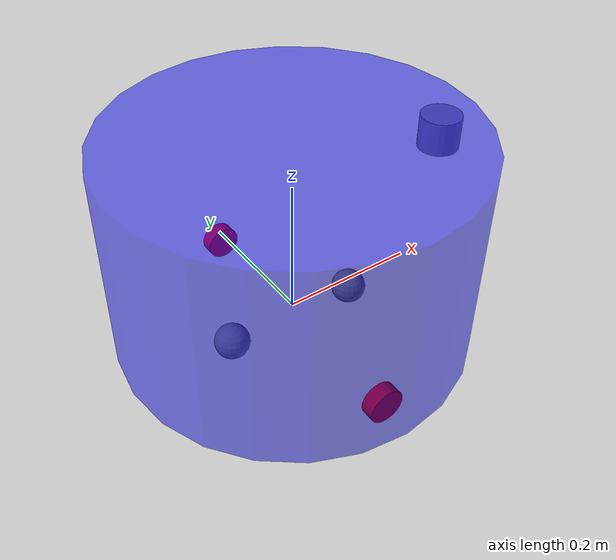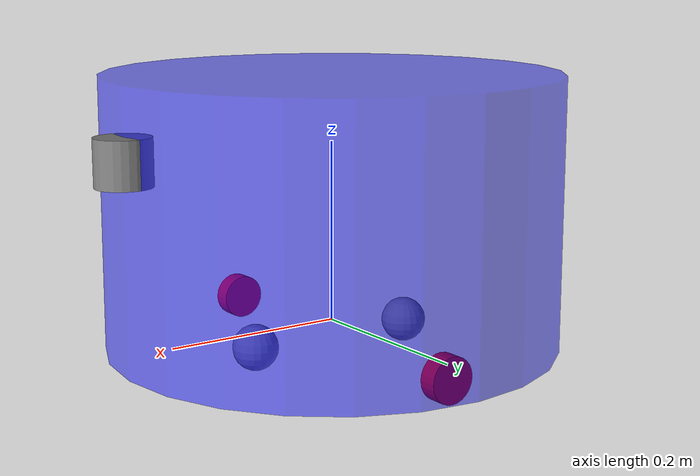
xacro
<?xml version="1.0"?>
<robot name="my_robot" xmlns:xacro="http://www.ros.org/wiki/xacro">
<xacro:include filename="$(find my_rb1_description)/urdf/robot.gazebo"/>
<material name="blue">
<color rgba="0 0 1 0.5"/>
</material>
<material name="red">
<color rgba="1 0 0 1"/>
</material>
<material name="grey">
<color rgba="0.5 0.5 0.5 1"/>
</material>

<!--  Define Properties -->
<xacro:property name="wheel_radius" value="0.025"/> <!-- 2.5 cm -->
<xacro:property name="wheel_length" value="0.02"/> <!-- 2 cm -->
<xacro:property name="wheel_mass" value="4"/> <!-- Mass of one wheel -->
<xacro:property name="caster_mass" value="1"/> <!-- Mass of one caster wheel -->
<xacro:property name="base_mass" value="14"/> <!-- Mass of base -->
<xacro:property name="lidar_mass" value="1"/> <!-- Mass of LIDAR -->

<!--  Wheel Macro -->
<xacro:macro name="wheel_link" params="prefix x y z r p yaw">
    <link name="${prefix}_wheel_link">
        <inertial>
            <mass value="${wheel_mass}"/>
            <origin xyz="${x} ${y} ${z}" rpy="${r} ${p} ${yaw}"/>
            <inertia ixx="${1/12 * wheel_mass * (3 * wheel_radius * wheel_radius + wheel_length * wheel_length)}"
                     ixy="0"
                     ixz="0"
                     iyy="${1/12 * wheel_mass * (3 * wheel_radius * wheel_radius + wheel_length * wheel_length)}"
                     iyz="0"
                     izz="${1/2 * wheel_mass * wheel_radius * wheel_radius}"/>
        </inertial>
        <collision>
            <geometry>
                <cylinder radius="${wheel_radius}" length="${wheel_length}"/>
            </geometry>
            <origin xyz="${x} ${y} ${z}" rpy="${r} ${p} ${yaw}"/>
        </collision>
        <visual>
            <geometry>
                <cylinder radius="${wheel_radius}" length="${wheel_length}"/>
            </geometry>
            <origin xyz="${x} ${y} ${z}" rpy="${r} ${p} ${yaw}"/>
            <material name="red"/>
        </visual>
    </link>
</xacro:macro>

<!--  Wheel Joint Macro -->
<xacro:macro name="wheel_joint" params="prefix x y z r p yaw">
    <joint name="${prefix}_wheel_joint" type="continuous">
        <parent link="base_link"/>
        <child link="${prefix}_wheel_link"/>
        <origin xyz="${x} ${y} ${z-0.125}" rpy="${r} ${p} ${yaw}"/>
        <axis xyz="0 0 1"/>  <!-- Ensure wheels rotate along the correct axis -->
    </joint>
</xacro:macro>
<!--base_foot_link and jin-->
<link name="base_footprint">
<origin xyz="0 0 0"/>

</link>
<joint name="base_foot_joint" type="fixed">
<parent link ="base_footprint"/>
<child link ="base_link"/>
<origin xyz="0 0 0.125" rpy="0 0 0"/>
</joint>
<!-- Base Link -->
<link name="base_link">
    <inertial>
        <mass value="${base_mass}"/>
        <origin xyz="0 0 0" rpy="0 0 0"/>
        <inertia ixx="0.5" ixy="0" ixz="0"
                 iyy="0.5" iyz="0"
                 izz="0.5"/> <!-- Approximate values -->
    </inertial>
    <collision>
        <geometry>
            <cylinder length="0.3" radius="0.25"/>
        </geometry>
        <origin xyz="0 0 0" rpy="0 0 0"/>
    </collision>
    <visual>
        <geometry>
            <cylinder length="0.3" radius="0.25"/>
        </geometry>
        <origin xyz="0 0 0" rpy="0 0 0"/>
        <material name="blue"/>
    </visual>
</link>

<!--  Wheels -->
<xacro:wheel_link prefix="base_left" x="0" y="0" z="0" r="0" p="0" yaw="0"/>
<xacro:wheel_link prefix="base_right" x="0" y="0" z="0" r="0" p="0" yaw="0"/>

<!--  Wheel Joints -->
<xacro:wheel_joint prefix="base_left" x="0" y="0.2" z="-0.015" r="-1.57" p="0" yaw="0"/>
<xacro:wheel_joint prefix="base_right" x="0" y="-0.2" z="-0.015" r="-1.57" p="0" yaw="0"/>

<!-- Front Caster -->
<link name="caster_front_wheel_link">
    <inertial>
        <mass value="${caster_mass}"/>
        <origin xyz="0 0 0" rpy="0 0 0"/>
        <inertia ixx="0.01" ixy="0" ixz="0"
                 iyy="0.01" iyz="0"
                 izz="0.01"/> <!-- Approximate values -->
    </inertial>
    <visual>
        <geometry>
            <sphere radius="0.025"/>
        </geometry>
        <origin xyz="0 0 -0.015" rpy="0 0 0"/>
        <material name="grey"/>
    </visual>
    <collision>
        <geometry>
            <sphere radius="0.025"/>
        </geometry>
        <origin xyz="0 0 -0.015" rpy="0 0 0"/>
    </collision>
</link>

<!-- Front Caster Joint -->
<joint name="caster_front_joint" type="fixed">
    <parent link="base_link"/>
    <child link="caster_front_wheel_link"/>
    <origin xyz="0.1 0 -0.125" rpy="0 0 0"/>
</joint>

<!-- Rear Caster -->
<link name="caster_rear_wheel_link">
    <inertial>
        <mass value="${caster_mass}"/>
        <origin xyz="0 0 0" rpy="0 0 0"/>
        <inertia ixx="0.01" ixy="0" ixz="0"
                 iyy="0.01" iyz="0"
                 izz="0.01"/> <!-- Approximate values -->
    </inertial>
    <visual>
        <geometry>
            <sphere radius="0.025"/>
        </geometry>
        <origin xyz="0 0 -0.015" rpy="0 0 0"/>
        <material name="grey"/>
    </visual>
    <collision>
        <geometry>
            <sphere radius="0.025"/>
        </geometry>
        <origin xyz="0 0 -0.015" rpy="0 0 0"/>
    </collision>
</link>

<!--  Rear Caster Joint -->
<joint name="caster_rear_joint" type="fixed">
    <parent link="base_link"/>
    <child link="caster_rear_wheel_link"/>
    <origin xyz="-0.1 0 -0.125" rpy="0 0 0"/>
</joint>

<!--  LIDAR Sensor -->
<link name="link_laser_scan">
    <inertial>
        <mass value="${lidar_mass}"/>
        <origin xyz="0 0 0" rpy="0 0 0"/>
        <inertia ixx="0.005" ixy="0" ixz="0"
                 iyy="0.005" iyz="0"
                 izz="0.005"/> <!-- Approximate values -->
    </inertial>
    <collision>
        <geometry>
            <cylinder radius="0.03" length="0.05"/>
                        <origin xyz="0 0 0" rpy="3.1457 0 0"/>

        </geometry>
    </collision>
    <visual>
        <geometry>
            <cylinder radius="0.03" length="0.05"/>
        </geometry>
            <origin xyz="0 0 0" rpy="3.1457 0 0"/>

        <material name="grey"/>
    </visual>
</link>

<!--  LIDAR Joint -->
<joint name="joint_laser_scan_chassis" type="fixed">
    <origin xyz="0.25 0 0.075" rpy="3.1457 0 0"/>
    <child link="link_laser_scan"/>
    <parent link="base_link"/>
</joint>

</robot>
